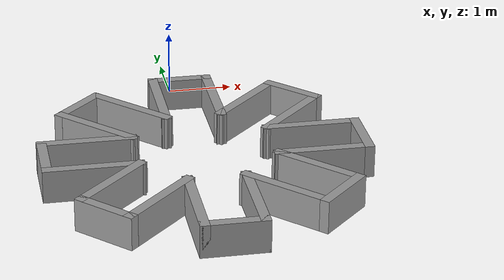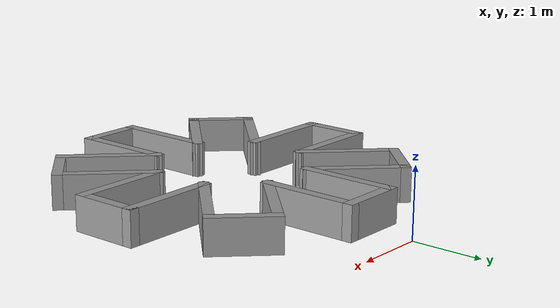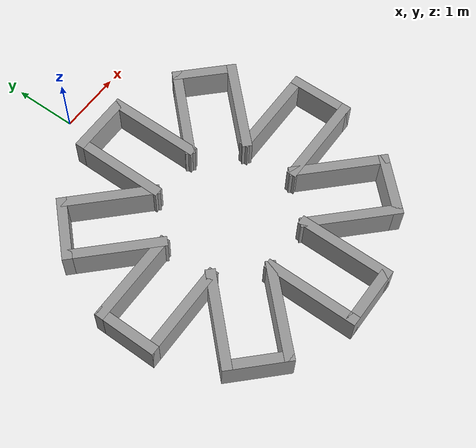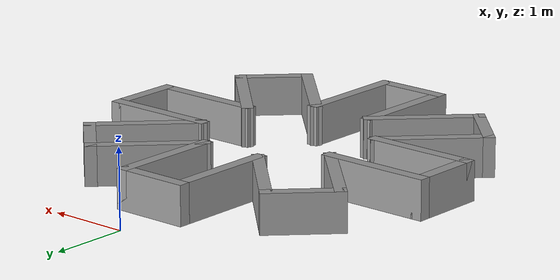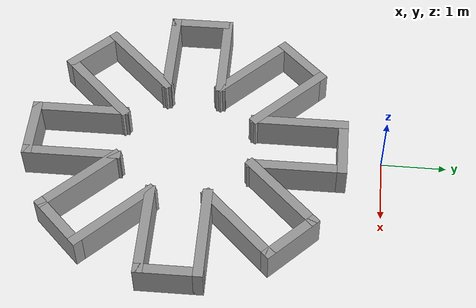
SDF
<?xml version='1.0'?>
<sdf version='1.5'>
  <model name='maze'>
    <pose>0.066 -2.995 0 0 -0 0</pose>
    <link name='Wall_0'>
      <collision name='Wall_0_Collision'>
        <geometry>
          <box>
            <size>1.5 0.15 0.5</size>
          </box>
        </geometry>
        <pose>0 0 0.25 0 -0 0</pose>
      </collision>
      <visual name='Wall_0_Visual'>
        <pose>0 0 0.25 0 -0 0</pose>
        <geometry>
          <box>
            <size>1.5 0.15 0.5</size>
          </box>
        </geometry>
        <material>
          <script>
            <uri>file://media/materials/scripts/gazebo.material</uri>
            <name>Gazebo/Grey</name>
          </script>
          <ambient>1 1 1 1</ambient>
        </material>
      </visual>
      <pose>-1.701 0.425 0 0 -0 3.14159</pose>
    </link>
    <link name='Wall_1'>
      <collision name='Wall_1_Collision'>
        <geometry>
          <box>
            <size>1 0.15 0.5</size>
          </box>
        </geometry>
        <pose>0 0 0.25 0 -0 0</pose>
      </collision>
      <visual name='Wall_1_Visual'>
        <pose>0 0 0.25 0 -0 0</pose>
        <geometry>
          <box>
            <size>1 0.15 0.5</size>
          </box>
        </geometry>
        <material>
          <script>
            <uri>file://media/materials/scripts/gazebo.material</uri>
            <name>Gazebo/Grey</name>
          </script>
          <ambient>1 1 1 1</ambient>
        </material>
      </visual>
      <pose>-2.376 0 0 0 0 -1.5708</pose>
    </link>
    <link name='Wall_10'>
      <collision name='Wall_10_Collision'>
        <geometry>
          <box>
            <size>1 0.15 0.5</size>
          </box>
        </geometry>
        <pose>0 0 0.25 0 -0 0</pose>
      </collision>
      <visual name='Wall_10_Visual'>
        <pose>0 0 0.25 0 -0 0</pose>
        <geometry>
          <box>
            <size>1 0.15 0.5</size>
          </box>
        </geometry>
        <material>
          <script>
            <uri>file://media/materials/scripts/gazebo.material</uri>
            <name>Gazebo/Grey</name>
          </script>
          <ambient>1 1 1 1</ambient>
        </material>
      </visual>
      <pose>1.6805 -1.6805 0 0 -0 0.785398</pose>
    </link>
    <link name='Wall_11'>
      <collision name='Wall_11_Collision'>
        <geometry>
          <box>
            <size>1.5 0.15 0.5</size>
          </box>
        </geometry>
        <pose>0 0 0.25 0 -0 0</pose>
      </collision>
      <visual name='Wall_11_Visual'>
        <pose>0 0 0.25 0 -0 0</pose>
        <geometry>
          <box>
            <size>1.5 0.15 0.5</size>
          </box>
        </geometry>
        <material>
          <script>
            <uri>file://media/materials/scripts/gazebo.material</uri>
            <name>Gazebo/Grey</name>
          </script>
          <ambient>1 1 1 1</ambient>
        </material>
      </visual>
      <pose>1.5035 -0.9025 0 0 -0 2.35619</pose>
    </link>
    <link name='Wall_12'>
      <collision name='Wall_12_Collision'>
        <geometry>
          <box>
            <size>1.5 0.15 0.5</size>
          </box>
        </geometry>
        <pose>0 0 0.25 0 -0 0</pose>
      </collision>
      <visual name='Wall_12_Visual'>
        <pose>0 0 0.25 0 -0 0</pose>
        <geometry>
          <box>
            <size>1.5 0.15 0.5</size>
          </box>
        </geometry>
        <material>
          <script>
            <uri>file://media/materials/scripts/gazebo.material</uri>
            <name>Gazebo/Grey</name>
          </script>
          <ambient>1 1 1 1</ambient>
        </material>
      </visual>
      <pose>1.701 -0.425 0 0 -0 0</pose>
    </link>
    <link name='Wall_13'>
      <collision name='Wall_13_Collision'>
        <geometry>
          <box>
            <size>1 0.15 0.5</size>
          </box>
        </geometry>
        <pose>0 0 0.25 0 -0 0</pose>
      </collision>
      <visual name='Wall_13_Visual'>
        <pose>0 0 0.25 0 -0 0</pose>
        <geometry>
          <box>
            <size>1 0.15 0.5</size>
          </box>
        </geometry>
        <material>
          <script>
            <uri>file://media/materials/scripts/gazebo.material</uri>
            <name>Gazebo/Grey</name>
          </script>
          <ambient>1 1 1 1</ambient>
        </material>
      </visual>
      <pose>2.376 0 0 0 -0 1.5708</pose>
    </link>
    <link name='Wall_14'>
      <collision name='Wall_14_Collision'>
        <geometry>
          <box>
            <size>1.5 0.15 0.5</size>
          </box>
        </geometry>
        <pose>0 0 0.25 0 -0 0</pose>
      </collision>
      <visual name='Wall_14_Visual'>
        <pose>0 0 0.25 0 -0 0</pose>
        <geometry>
          <box>
            <size>1.5 0.15 0.5</size>
          </box>
        </geometry>
        <material>
          <script>
            <uri>file://media/materials/scripts/gazebo.material</uri>
            <name>Gazebo/Grey</name>
          </script>
          <ambient>1 1 1 1</ambient>
        </material>
      </visual>
      <pose>1.701 0.425 0 0 -0 3.14159</pose>
    </link>
    <link name='Wall_15'>
      <collision name='Wall_15_Collision'>
        <geometry>
          <box>
            <size>1.5 0.15 0.5</size>
          </box>
        </geometry>
        <pose>0 0 0.25 0 -0 0</pose>
      </collision>
      <visual name='Wall_15_Visual'>
        <pose>0 0 0.25 0 -0 0</pose>
        <geometry>
          <box>
            <size>1.5 0.15 0.5</size>
          </box>
        </geometry>
        <material>
          <script>
            <uri>file://media/materials/scripts/gazebo.material</uri>
            <name>Gazebo/Grey</name>
          </script>
          <ambient>1 1 1 1</ambient>
        </material>
      </visual>
      <pose>1.5035 0.9025 0 0 -0 0.785398</pose>
    </link>
    <link name='Wall_16'>
      <collision name='Wall_16_Collision'>
        <geometry>
          <box>
            <size>1 0.15 0.5</size>
          </box>
        </geometry>
        <pose>0 0 0.25 0 -0 0</pose>
      </collision>
      <visual name='Wall_16_Visual'>
        <pose>0 0 0.25 0 -0 0</pose>
        <geometry>
          <box>
            <size>1 0.15 0.5</size>
          </box>
        </geometry>
        <material>
          <script>
            <uri>file://media/materials/scripts/gazebo.material</uri>
            <name>Gazebo/Grey</name>
          </script>
          <ambient>1 1 1 1</ambient>
        </material>
      </visual>
      <pose>1.6805 1.6805 0 0 -0 2.35619</pose>
    </link>
    <link name='Wall_17'>
      <collision name='Wall_17_Collision'>
        <geometry>
          <box>
            <size>1.5 0.15 0.5</size>
          </box>
        </geometry>
        <pose>0 0 0.25 0 -0 0</pose>
      </collision>
      <visual name='Wall_17_Visual'>
        <pose>0 0 0.25 0 -0 0</pose>
        <geometry>
          <box>
            <size>1.5 0.15 0.5</size>
          </box>
        </geometry>
        <material>
          <script>
            <uri>file://media/materials/scripts/gazebo.material</uri>
            <name>Gazebo/Grey</name>
          </script>
          <ambient>1 1 1 1</ambient>
        </material>
      </visual>
      <pose>0.9025 1.5035 0 0 0 -2.35619</pose>
    </link>
    <link name='Wall_18'>
      <collision name='Wall_18_Collision'>
        <geometry>
          <box>
            <size>1.5 0.15 0.5</size>
          </box>
        </geometry>
        <pose>0 0 0.25 0 -0 0</pose>
      </collision>
      <visual name='Wall_18_Visual'>
        <pose>0 0 0.25 0 -0 0</pose>
        <geometry>
          <box>
            <size>1.5 0.15 0.5</size>
          </box>
        </geometry>
        <material>
          <script>
            <uri>file://media/materials/scripts/gazebo.material</uri>
            <name>Gazebo/Grey</name>
          </script>
          <ambient>1 1 1 1</ambient>
        </material>
      </visual>
      <pose>0.425 1.701 0 0 -0 1.5708</pose>
    </link>
    <link name='Wall_19'>
      <collision name='Wall_19_Collision'>
        <geometry>
          <box>
            <size>1 0.15 0.5</size>
          </box>
        </geometry>
        <pose>0 0 0.25 0 -0 0</pose>
      </collision>
      <visual name='Wall_19_Visual'>
        <pose>0 0 0.25 0 -0 0</pose>
        <geometry>
          <box>
            <size>1 0.15 0.5</size>
          </box>
        </geometry>
        <material>
          <script>
            <uri>file://media/materials/scripts/gazebo.material</uri>
            <name>Gazebo/Grey</name>
          </script>
          <ambient>1 1 1 1</ambient>
        </material>
      </visual>
      <pose>0 2.376 0 0 -0 3.14159</pose>
    </link>
    <link name='Wall_2'>
      <collision name='Wall_2_Collision'>
        <geometry>
          <box>
            <size>1.5 0.15 0.5</size>
          </box>
        </geometry>
        <pose>0 0 0.25 0 -0 0</pose>
      </collision>
      <visual name='Wall_2_Visual'>
        <pose>0 0 0.25 0 -0 0</pose>
        <geometry>
          <box>
            <size>1.5 0.15 0.5</size>
          </box>
        </geometry>
        <material>
          <script>
            <uri>file://media/materials/scripts/gazebo.material</uri>
            <name>Gazebo/Grey</name>
          </script>
          <ambient>1 1 1 1</ambient>
        </material>
      </visual>
      <pose>-1.701 -0.425 0 0 -0 0</pose>
    </link>
    <link name='Wall_20'>
      <collision name='Wall_20_Collision'>
        <geometry>
          <box>
            <size>1.5 0.15 0.5</size>
          </box>
        </geometry>
        <pose>0 0 0.25 0 -0 0</pose>
      </collision>
      <visual name='Wall_20_Visual'>
        <pose>0 0 0.25 0 -0 0</pose>
        <geometry>
          <box>
            <size>1.5 0.15 0.5</size>
          </box>
        </geometry>
        <material>
          <script>
            <uri>file://media/materials/scripts/gazebo.material</uri>
            <name>Gazebo/Grey</name>
          </script>
          <ambient>1 1 1 1</ambient>
        </material>
      </visual>
      <pose>-0.425 1.701 0 0 0 -1.5708</pose>
    </link>
    <link name='Wall_21'>
      <collision name='Wall_21_Collision'>
        <geometry>
          <box>
            <size>1.5 0.15 0.5</size>
          </box>
        </geometry>
        <pose>0 0 0.25 0 -0 0</pose>
      </collision>
      <visual name='Wall_21_Visual'>
        <pose>0 0 0.25 0 -0 0</pose>
        <geometry>
          <box>
            <size>1.5 0.15 0.5</size>
          </box>
        </geometry>
        <material>
          <script>
            <uri>file://media/materials/scripts/gazebo.material</uri>
            <name>Gazebo/Grey</name>
          </script>
          <ambient>1 1 1 1</ambient>
        </material>
      </visual>
      <pose>-0.9025 1.5035 0 0 -0 2.35619</pose>
    </link>
    <link name='Wall_22'>
      <collision name='Wall_22_Collision'>
        <geometry>
          <box>
            <size>1 0.15 0.5</size>
          </box>
        </geometry>
        <pose>0 0 0.25 0 -0 0</pose>
      </collision>
      <visual name='Wall_22_Visual'>
        <pose>0 0 0.25 0 -0 0</pose>
        <geometry>
          <box>
            <size>1 0.15 0.5</size>
          </box>
        </geometry>
        <material>
          <script>
            <uri>file://media/materials/scripts/gazebo.material</uri>
            <name>Gazebo/Grey</name>
          </script>
          <ambient>1 1 1 1</ambient>
        </material>
      </visual>
      <pose>-1.6805 1.6805 0 0 0 -2.35619</pose>
    </link>
    <link name='Wall_23'>
      <collision name='Wall_23_Collision'>
        <geometry>
          <box>
            <size>1.5 0.15 0.5</size>
          </box>
        </geometry>
        <pose>0 0 0.25 0 -0 0</pose>
      </collision>
      <visual name='Wall_23_Visual'>
        <pose>0 0 0.25 0 -0 0</pose>
        <geometry>
          <box>
            <size>1.5 0.15 0.5</size>
          </box>
        </geometry>
        <material>
          <script>
            <uri>file://media/materials/scripts/gazebo.material</uri>
            <name>Gazebo/Grey</name>
          </script>
          <ambient>1 1 1 1</ambient>
        </material>
      </visual>
      <pose>-1.5035 0.9025 0 0 0 -0.785398</pose>
    </link>
    <link name='Wall_3'>
      <collision name='Wall_3_Collision'>
        <geometry>
          <box>
            <size>1.5 0.15 0.5</size>
          </box>
        </geometry>
        <pose>0 0 0.25 0 -0 0</pose>
      </collision>
      <visual name='Wall_3_Visual'>
        <pose>0 0 0.25 0 -0 0</pose>
        <geometry>
          <box>
            <size>1.5 0.15 0.5</size>
          </box>
        </geometry>
        <material>
          <script>
            <uri>file://media/materials/scripts/gazebo.material</uri>
            <name>Gazebo/Grey</name>
          </script>
          <ambient>1 1 1 1</ambient>
        </material>
      </visual>
      <pose>-1.5035 -0.9025 0 0 0 -2.35619</pose>
    </link>
    <link name='Wall_4'>
      <collision name='Wall_4_Collision'>
        <geometry>
          <box>
            <size>1 0.15 0.5</size>
          </box>
        </geometry>
        <pose>0 0 0.25 0 -0 0</pose>
      </collision>
      <visual name='Wall_4_Visual'>
        <pose>0 0 0.25 0 -0 0</pose>
        <geometry>
          <box>
            <size>1 0.15 0.5</size>
          </box>
        </geometry>
        <material>
          <script>
            <uri>file://media/materials/scripts/gazebo.material</uri>
            <name>Gazebo/Grey</name>
          </script>
          <ambient>1 1 1 1</ambient>
        </material>
      </visual>
      <pose>-1.6805 -1.6805 0 0 0 -0.785398</pose>
    </link>
    <link name='Wall_5'>
      <collision name='Wall_5_Collision'>
        <geometry>
          <box>
            <size>1.5 0.15 0.5</size>
          </box>
        </geometry>
        <pose>0 0 0.25 0 -0 0</pose>
      </collision>
      <visual name='Wall_5_Visual'>
        <pose>0 0 0.25 0 -0 0</pose>
        <geometry>
          <box>
            <size>1.5 0.15 0.5</size>
          </box>
        </geometry>
        <material>
          <script>
            <uri>file://media/materials/scripts/gazebo.material</uri>
            <name>Gazebo/Grey</name>
          </script>
          <ambient>1 1 1 1</ambient>
        </material>
      </visual>
      <pose>-0.9025 -1.5035 0 0 -0 0.785398</pose>
    </link>
    <link name='Wall_6'>
      <collision name='Wall_6_Collision'>
        <geometry>
          <box>
            <size>1.5 0.15 0.5</size>
          </box>
        </geometry>
        <pose>0 0 0.25 0 -0 0</pose>
      </collision>
      <visual name='Wall_6_Visual'>
        <pose>0 0 0.25 0 -0 0</pose>
        <geometry>
          <box>
            <size>1.5 0.15 0.5</size>
          </box>
        </geometry>
        <material>
          <script>
            <uri>file://media/materials/scripts/gazebo.material</uri>
            <name>Gazebo/Grey</name>
          </script>
          <ambient>1 1 1 1</ambient>
        </material>
      </visual>
      <pose>-0.425 -1.701 0 0 0 -1.5708</pose>
    </link>
    <link name='Wall_7'>
      <collision name='Wall_7_Collision'>
        <geometry>
          <box>
            <size>1 0.15 0.5</size>
          </box>
        </geometry>
        <pose>0 0 0.25 0 -0 0</pose>
      </collision>
      <visual name='Wall_7_Visual'>
        <pose>0 0 0.25 0 -0 0</pose>
        <geometry>
          <box>
            <size>1 0.15 0.5</size>
          </box>
        </geometry>
        <material>
          <script>
            <uri>file://media/materials/scripts/gazebo.material</uri>
            <name>Gazebo/Grey</name>
          </script>
          <ambient>1 1 1 1</ambient>
        </material>
      </visual>
      <pose>0 -2.376 0 0 -0 0</pose>
    </link>
    <link name='Wall_8'>
      <collision name='Wall_8_Collision'>
        <geometry>
          <box>
            <size>1.5 0.15 0.5</size>
          </box>
        </geometry>
        <pose>0 0 0.25 0 -0 0</pose>
      </collision>
      <visual name='Wall_8_Visual'>
        <pose>0 0 0.25 0 -0 0</pose>
        <geometry>
          <box>
            <size>1.5 0.15 0.5</size>
          </box>
        </geometry>
        <material>
          <script>
            <uri>file://media/materials/scripts/gazebo.material</uri>
            <name>Gazebo/Grey</name>
          </script>
          <ambient>1 1 1 1</ambient>
        </material>
      </visual>
      <pose>0.425 -1.701 0 0 -0 1.5708</pose>
    </link>
    <link name='Wall_9'>
      <collision name='Wall_9_Collision'>
        <geometry>
          <box>
            <size>1.5 0.15 0.5</size>
          </box>
        </geometry>
        <pose>0 0 0.25 0 -0 0</pose>
      </collision>
      <visual name='Wall_9_Visual'>
        <pose>0 0 0.25 0 -0 0</pose>
        <geometry>
          <box>
            <size>1.5 0.15 0.5</size>
          </box>
        </geometry>
        <material>
          <script>
            <uri>file://media/materials/scripts/gazebo.material</uri>
            <name>Gazebo/Grey</name>
          </script>
          <ambient>1 1 1 1</ambient>
        </material>
      </visual>
      <pose>0.9025 -1.5035 0 0 0 -0.785398</pose>
    </link>
    <static>1</static>
  </model>
</sdf>
